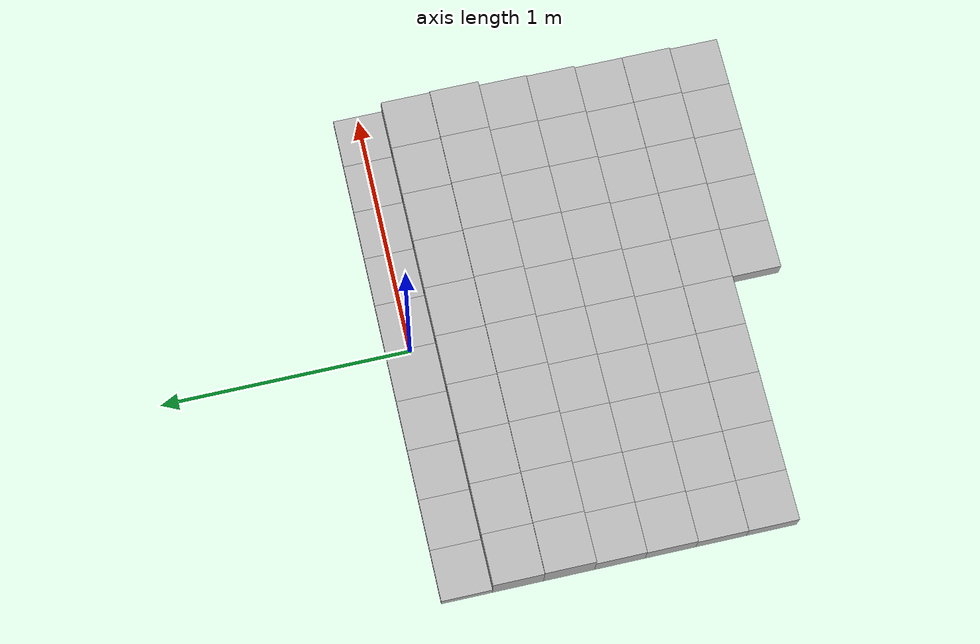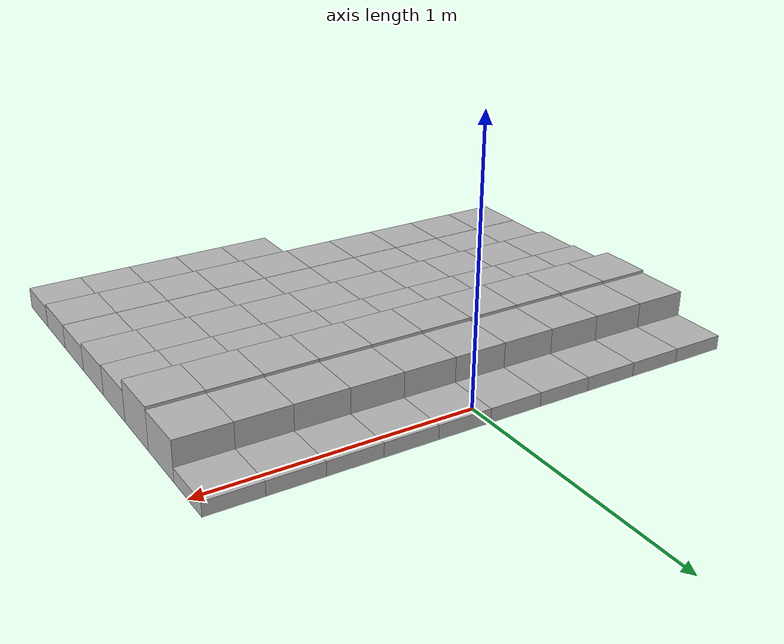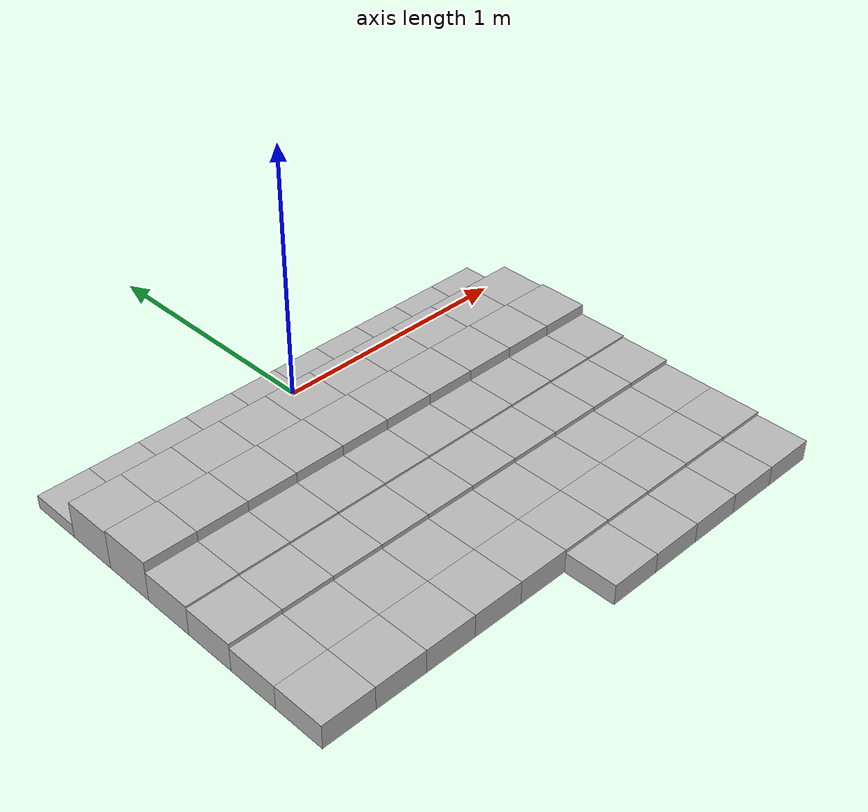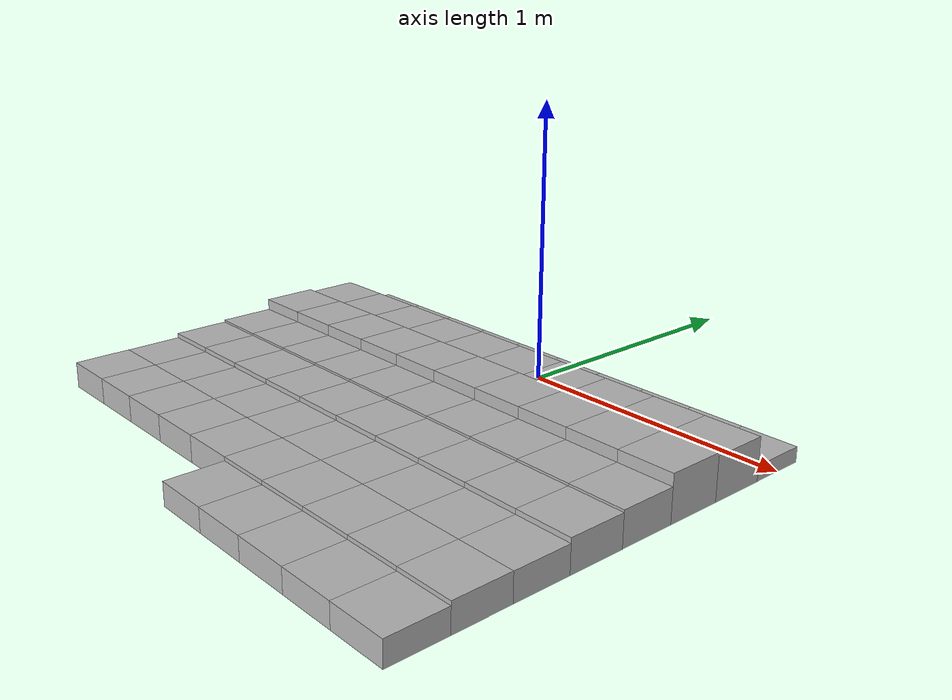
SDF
<sdf version="1.6">
 <model name="Terrain">
  <static>true</static>
  <link name="box_0_0">
   <pose>-0.9 0.0 0.0260707981716 0 0 0</pose>
   <inertial>
    <mass>1.0</mass>
    <inertia><ixx>0.0</ixx><ixy>0.0</ixy><ixz>0.0</ixz><iyy>0.0</iyy><iyz>0.0</iyz><izz>0.0</izz></inertia>
   </inertial>
   <collision name="collision"><geometry><box><size>0.2 0.2 0.0521415963432</size></box></geometry></collision>
   <visual name="visual"><geometry><box><size>0.2 0.2 0.0521415963432</size></box></geometry></visual>
  </link>
  <link name="box_0_1">
   <pose>-0.7 0.0 0.0260707981716 0 0 0</pose>
   <inertial>
    <mass>1.0</mass>
    <inertia><ixx>0.0</ixx><ixy>0.0</ixy><ixz>0.0</ixz><iyy>0.0</iyy><iyz>0.0</iyz><izz>0.0</izz></inertia>
   </inertial>
   <collision name="collision"><geometry><box><size>0.2 0.2 0.0521415963432</size></box></geometry></collision>
   <visual name="visual"><geometry><box><size>0.2 0.2 0.0521415963432</size></box></geometry></visual>
  </link>
  <link name="box_0_2">
   <pose>-0.5 0.0 0.0260707981716 0 0 0</pose>
   <inertial>
    <mass>1.0</mass>
    <inertia><ixx>0.0</ixx><ixy>0.0</ixy><ixz>0.0</ixz><iyy>0.0</iyy><iyz>0.0</iyz><izz>0.0</izz></inertia>
   </inertial>
   <collision name="collision"><geometry><box><size>0.2 0.2 0.0521415963432</size></box></geometry></collision>
   <visual name="visual"><geometry><box><size>0.2 0.2 0.0521415963432</size></box></geometry></visual>
  </link>
  <link name="box_0_3">
   <pose>-0.3 0.0 0.0260707981716 0 0 0</pose>
   <inertial>
    <mass>1.0</mass>
    <inertia><ixx>0.0</ixx><ixy>0.0</ixy><ixz>0.0</ixz><iyy>0.0</iyy><iyz>0.0</iyz><izz>0.0</izz></inertia>
   </inertial>
   <collision name="collision"><geometry><box><size>0.2 0.2 0.0521415963432</size></box></geometry></collision>
   <visual name="visual"><geometry><box><size>0.2 0.2 0.0521415963432</size></box></geometry></visual>
  </link>
  <link name="box_0_4">
   <pose>-0.1 0.0 0.0260707981716 0 0 0</pose>
   <inertial>
    <mass>1.0</mass>
    <inertia><ixx>0.0</ixx><ixy>0.0</ixy><ixz>0.0</ixz><iyy>0.0</iyy><iyz>0.0</iyz><izz>0.0</izz></inertia>
   </inertial>
   <collision name="collision"><geometry><box><size>0.2 0.2 0.0521415963432</size></box></geometry></collision>
   <visual name="visual"><geometry><box><size>0.2 0.2 0.0521415963432</size></box></geometry></visual>
  </link>
  <link name="box_0_5">
   <pose>0.1 0.0 0.0260707981716 0 0 0</pose>
   <inertial>
    <mass>1.0</mass>
    <inertia><ixx>0.0</ixx><ixy>0.0</ixy><ixz>0.0</ixz><iyy>0.0</iyy><iyz>0.0</iyz><izz>0.0</izz></inertia>
   </inertial>
   <collision name="collision"><geometry><box><size>0.2 0.2 0.0521415963432</size></box></geometry></collision>
   <visual name="visual"><geometry><box><size>0.2 0.2 0.0521415963432</size></box></geometry></visual>
  </link>
  <link name="box_0_6">
   <pose>0.3 0.0 0.0260707981716 0 0 0</pose>
   <inertial>
    <mass>1.0</mass>
    <inertia><ixx>0.0</ixx><ixy>0.0</ixy><ixz>0.0</ixz><iyy>0.0</iyy><iyz>0.0</iyz><izz>0.0</izz></inertia>
   </inertial>
   <collision name="collision"><geometry><box><size>0.2 0.2 0.0521415963432</size></box></geometry></collision>
   <visual name="visual"><geometry><box><size>0.2 0.2 0.0521415963432</size></box></geometry></visual>
  </link>
  <link name="box_0_7">
   <pose>0.5 0.0 0.0260707981716 0 0 0</pose>
   <inertial>
    <mass>1.0</mass>
    <inertia><ixx>0.0</ixx><ixy>0.0</ixy><ixz>0.0</ixz><iyy>0.0</iyy><iyz>0.0</iyz><izz>0.0</izz></inertia>
   </inertial>
   <collision name="collision"><geometry><box><size>0.2 0.2 0.0521415963432</size></box></geometry></collision>
   <visual name="visual"><geometry><box><size>0.2 0.2 0.0521415963432</size></box></geometry></visual>
  </link>
  <link name="box_0_8">
   <pose>0.7 0.0 0.0260707981716 0 0 0</pose>
   <inertial>
    <mass>1.0</mass>
    <inertia><ixx>0.0</ixx><ixy>0.0</ixy><ixz>0.0</ixz><iyy>0.0</iyy><iyz>0.0</iyz><izz>0.0</izz></inertia>
   </inertial>
   <collision name="collision"><geometry><box><size>0.2 0.2 0.0521415963432</size></box></geometry></collision>
   <visual name="visual"><geometry><box><size>0.2 0.2 0.0521415963432</size></box></geometry></visual>
  </link>
  <link name="box_0_9">
   <pose>0.9 0.0 0.0260707981716 0 0 0</pose>
   <inertial>
    <mass>1.0</mass>
    <inertia><ixx>0.0</ixx><ixy>0.0</ixy><ixz>0.0</ixz><iyy>0.0</iyy><iyz>0.0</iyz><izz>0.0</izz></inertia>
   </inertial>
   <collision name="collision"><geometry><box><size>0.2 0.2 0.0521415963432</size></box></geometry></collision>
   <visual name="visual"><geometry><box><size>0.2 0.2 0.0521415963432</size></box></geometry></visual>
  </link>
  <link name="box_1_0">
   <pose>-0.9 -0.2 0.0728643831933 0 0 0</pose>
   <inertial>
    <mass>1.0</mass>
    <inertia><ixx>0.0</ixx><ixy>0.0</ixy><ixz>0.0</ixz><iyy>0.0</iyy><iyz>0.0</iyz><izz>0.0</izz></inertia>
   </inertial>
   <collision name="collision"><geometry><box><size>0.2 0.2 0.145728766387</size></box></geometry></collision>
   <visual name="visual"><geometry><box><size>0.2 0.2 0.145728766387</size></box></geometry></visual>
  </link>
  <link name="box_1_1">
   <pose>-0.7 -0.2 0.0728643831933 0 0 0</pose>
   <inertial>
    <mass>1.0</mass>
    <inertia><ixx>0.0</ixx><ixy>0.0</ixy><ixz>0.0</ixz><iyy>0.0</iyy><iyz>0.0</iyz><izz>0.0</izz></inertia>
   </inertial>
   <collision name="collision"><geometry><box><size>0.2 0.2 0.145728766387</size></box></geometry></collision>
   <visual name="visual"><geometry><box><size>0.2 0.2 0.145728766387</size></box></geometry></visual>
  </link>
  <link name="box_1_2">
   <pose>-0.5 -0.2 0.0728643831933 0 0 0</pose>
   <inertial>
    <mass>1.0</mass>
    <inertia><ixx>0.0</ixx><ixy>0.0</ixy><ixz>0.0</ixz><iyy>0.0</iyy><iyz>0.0</iyz><izz>0.0</izz></inertia>
   </inertial>
   <collision name="collision"><geometry><box><size>0.2 0.2 0.145728766387</size></box></geometry></collision>
   <visual name="visual"><geometry><box><size>0.2 0.2 0.145728766387</size></box></geometry></visual>
  </link>
  <link name="box_1_3">
   <pose>-0.3 -0.2 0.0728643831933 0 0 0</pose>
   <inertial>
    <mass>1.0</mass>
    <inertia><ixx>0.0</ixx><ixy>0.0</ixy><ixz>0.0</ixz><iyy>0.0</iyy><iyz>0.0</iyz><izz>0.0</izz></inertia>
   </inertial>
   <collision name="collision"><geometry><box><size>0.2 0.2 0.145728766387</size></box></geometry></collision>
   <visual name="visual"><geometry><box><size>0.2 0.2 0.145728766387</size></box></geometry></visual>
  </link>
  <link name="box_1_4">
   <pose>-0.1 -0.2 0.0728643831933 0 0 0</pose>
   <inertial>
    <mass>1.0</mass>
    <inertia><ixx>0.0</ixx><ixy>0.0</ixy><ixz>0.0</ixz><iyy>0.0</iyy><iyz>0.0</iyz><izz>0.0</izz></inertia>
   </inertial>
   <collision name="collision"><geometry><box><size>0.2 0.2 0.145728766387</size></box></geometry></collision>
   <visual name="visual"><geometry><box><size>0.2 0.2 0.145728766387</size></box></geometry></visual>
  </link>
  <link name="box_1_5">
   <pose>0.1 -0.2 0.0728643831933 0 0 0</pose>
   <inertial>
    <mass>1.0</mass>
    <inertia><ixx>0.0</ixx><ixy>0.0</ixy><ixz>0.0</ixz><iyy>0.0</iyy><iyz>0.0</iyz><izz>0.0</izz></inertia>
   </inertial>
   <collision name="collision"><geometry><box><size>0.2 0.2 0.145728766387</size></box></geometry></collision>
   <visual name="visual"><geometry><box><size>0.2 0.2 0.145728766387</size></box></geometry></visual>
  </link>
  <link name="box_1_6">
   <pose>0.3 -0.2 0.0728643831933 0 0 0</pose>
   <inertial>
    <mass>1.0</mass>
    <inertia><ixx>0.0</ixx><ixy>0.0</ixy><ixz>0.0</ixz><iyy>0.0</iyy><iyz>0.0</iyz><izz>0.0</izz></inertia>
   </inertial>
   <collision name="collision"><geometry><box><size>0.2 0.2 0.145728766387</size></box></geometry></collision>
   <visual name="visual"><geometry><box><size>0.2 0.2 0.145728766387</size></box></geometry></visual>
  </link>
  <link name="box_1_7">
   <pose>0.5 -0.2 0.0728643831933 0 0 0</pose>
   <inertial>
    <mass>1.0</mass>
    <inertia><ixx>0.0</ixx><ixy>0.0</ixy><ixz>0.0</ixz><iyy>0.0</iyy><iyz>0.0</iyz><izz>0.0</izz></inertia>
   </inertial>
   <collision name="collision"><geometry><box><size>0.2 0.2 0.145728766387</size></box></geometry></collision>
   <visual name="visual"><geometry><box><size>0.2 0.2 0.145728766387</size></box></geometry></visual>
  </link>
  <link name="box_1_8">
   <pose>0.7 -0.2 0.0728643831933 0 0 0</pose>
   <inertial>
    <mass>1.0</mass>
    <inertia><ixx>0.0</ixx><ixy>0.0</ixy><ixz>0.0</ixz><iyy>0.0</iyy><iyz>0.0</iyz><izz>0.0</izz></inertia>
   </inertial>
   <collision name="collision"><geometry><box><size>0.2 0.2 0.145728766387</size></box></geometry></collision>
   <visual name="visual"><geometry><box><size>0.2 0.2 0.145728766387</size></box></geometry></visual>
  </link>
  <link name="box_1_9">
   <pose>0.9 -0.2 0.0728643831933 0 0 0</pose>
   <inertial>
    <mass>1.0</mass>
    <inertia><ixx>0.0</ixx><ixy>0.0</ixy><ixz>0.0</ixz><iyy>0.0</iyy><iyz>0.0</iyz><izz>0.0</izz></inertia>
   </inertial>
   <collision name="collision"><geometry><box><size>0.2 0.2 0.145728766387</size></box></geometry></collision>
   <visual name="visual"><geometry><box><size>0.2 0.2 0.145728766387</size></box></geometry></visual>
  </link>
  <link name="box_2_0">
   <pose>-0.9 -0.4 0.0782064905517 0 0 0</pose>
   <inertial>
    <mass>1.0</mass>
    <inertia><ixx>0.0</ixx><ixy>0.0</ixy><ixz>0.0</ixz><iyy>0.0</iyy><iyz>0.0</iyz><izz>0.0</izz></inertia>
   </inertial>
   <collision name="collision"><geometry><box><size>0.2 0.2 0.156412981103</size></box></geometry></collision>
   <visual name="visual"><geometry><box><size>0.2 0.2 0.156412981103</size></box></geometry></visual>
  </link>
  <link name="box_2_1">
   <pose>-0.7 -0.4 0.0782064905517 0 0 0</pose>
   <inertial>
    <mass>1.0</mass>
    <inertia><ixx>0.0</ixx><ixy>0.0</ixy><ixz>0.0</ixz><iyy>0.0</iyy><iyz>0.0</iyz><izz>0.0</izz></inertia>
   </inertial>
   <collision name="collision"><geometry><box><size>0.2 0.2 0.156412981103</size></box></geometry></collision>
   <visual name="visual"><geometry><box><size>0.2 0.2 0.156412981103</size></box></geometry></visual>
  </link>
  <link name="box_2_2">
   <pose>-0.5 -0.4 0.0782064905517 0 0 0</pose>
   <inertial>
    <mass>1.0</mass>
    <inertia><ixx>0.0</ixx><ixy>0.0</ixy><ixz>0.0</ixz><iyy>0.0</iyy><iyz>0.0</iyz><izz>0.0</izz></inertia>
   </inertial>
   <collision name="collision"><geometry><box><size>0.2 0.2 0.156412981103</size></box></geometry></collision>
   <visual name="visual"><geometry><box><size>0.2 0.2 0.156412981103</size></box></geometry></visual>
  </link>
  <link name="box_2_3">
   <pose>-0.3 -0.4 0.0782064905517 0 0 0</pose>
   <inertial>
    <mass>1.0</mass>
    <inertia><ixx>0.0</ixx><ixy>0.0</ixy><ixz>0.0</ixz><iyy>0.0</iyy><iyz>0.0</iyz><izz>0.0</izz></inertia>
   </inertial>
   <collision name="collision"><geometry><box><size>0.2 0.2 0.156412981103</size></box></geometry></collision>
   <visual name="visual"><geometry><box><size>0.2 0.2 0.156412981103</size></box></geometry></visual>
  </link>
  <link name="box_2_4">
   <pose>-0.1 -0.4 0.0782064905517 0 0 0</pose>
   <inertial>
    <mass>1.0</mass>
    <inertia><ixx>0.0</ixx><ixy>0.0</ixy><ixz>0.0</ixz><iyy>0.0</iyy><iyz>0.0</iyz><izz>0.0</izz></inertia>
   </inertial>
   <collision name="collision"><geometry><box><size>0.2 0.2 0.156412981103</size></box></geometry></collision>
   <visual name="visual"><geometry><box><size>0.2 0.2 0.156412981103</size></box></geometry></visual>
  </link>
  <link name="box_2_5">
   <pose>0.1 -0.4 0.0782064905517 0 0 0</pose>
   <inertial>
    <mass>1.0</mass>
    <inertia><ixx>0.0</ixx><ixy>0.0</ixy><ixz>0.0</ixz><iyy>0.0</iyy><iyz>0.0</iyz><izz>0.0</izz></inertia>
   </inertial>
   <collision name="collision"><geometry><box><size>0.2 0.2 0.156412981103</size></box></geometry></collision>
   <visual name="visual"><geometry><box><size>0.2 0.2 0.156412981103</size></box></geometry></visual>
  </link>
  <link name="box_2_6">
   <pose>0.3 -0.4 0.0782064905517 0 0 0</pose>
   <inertial>
    <mass>1.0</mass>
    <inertia><ixx>0.0</ixx><ixy>0.0</ixy><ixz>0.0</ixz><iyy>0.0</iyy><iyz>0.0</iyz><izz>0.0</izz></inertia>
   </inertial>
   <collision name="collision"><geometry><box><size>0.2 0.2 0.156412981103</size></box></geometry></collision>
   <visual name="visual"><geometry><box><size>0.2 0.2 0.156412981103</size></box></geometry></visual>
  </link>
  <link name="box_2_7">
   <pose>0.5 -0.4 0.0782064905517 0 0 0</pose>
   <inertial>
    <mass>1.0</mass>
    <inertia><ixx>0.0</ixx><ixy>0.0</ixy><ixz>0.0</ixz><iyy>0.0</iyy><iyz>0.0</iyz><izz>0.0</izz></inertia>
   </inertial>
   <collision name="collision"><geometry><box><size>0.2 0.2 0.156412981103</size></box></geometry></collision>
   <visual name="visual"><geometry><box><size>0.2 0.2 0.156412981103</size></box></geometry></visual>
  </link>
  <link name="box_2_8">
   <pose>0.7 -0.4 0.0782064905517 0 0 0</pose>
   <inertial>
    <mass>1.0</mass>
    <inertia><ixx>0.0</ixx><ixy>0.0</ixy><ixz>0.0</ixz><iyy>0.0</iyy><iyz>0.0</iyz><izz>0.0</izz></inertia>
   </inertial>
   <collision name="collision"><geometry><box><size>0.2 0.2 0.156412981103</size></box></geometry></collision>
   <visual name="visual"><geometry><box><size>0.2 0.2 0.156412981103</size></box></geometry></visual>
  </link>
  <link name="box_2_9">
   <pose>0.9 -0.4 0.0782064905517 0 0 0</pose>
   <inertial>
    <mass>1.0</mass>
    <inertia><ixx>0.0</ixx><ixy>0.0</ixy><ixz>0.0</ixz><iyy>0.0</iyy><iyz>0.0</iyz><izz>0.0</izz></inertia>
   </inertial>
   <collision name="collision"><geometry><box><size>0.2 0.2 0.156412981103</size></box></geometry></collision>
   <visual name="visual"><geometry><box><size>0.2 0.2 0.156412981103</size></box></geometry></visual>
  </link>
  <link name="box_3_0">
   <pose>-0.9 -0.6 0.0580793520767 0 0 0</pose>
   <inertial>
    <mass>1.0</mass>
    <inertia><ixx>0.0</ixx><ixy>0.0</ixy><ixz>0.0</ixz><iyy>0.0</iyy><iyz>0.0</iyz><izz>0.0</izz></inertia>
   </inertial>
   <collision name="collision"><geometry><box><size>0.2 0.2 0.116158704153</size></box></geometry></collision>
   <visual name="visual"><geometry><box><size>0.2 0.2 0.116158704153</size></box></geometry></visual>
  </link>
  <link name="box_3_1">
   <pose>-0.7 -0.6 0.0580793520767 0 0 0</pose>
   <inertial>
    <mass>1.0</mass>
    <inertia><ixx>0.0</ixx><ixy>0.0</ixy><ixz>0.0</ixz><iyy>0.0</iyy><iyz>0.0</iyz><izz>0.0</izz></inertia>
   </inertial>
   <collision name="collision"><geometry><box><size>0.2 0.2 0.116158704153</size></box></geometry></collision>
   <visual name="visual"><geometry><box><size>0.2 0.2 0.116158704153</size></box></geometry></visual>
  </link>
  <link name="box_3_2">
   <pose>-0.5 -0.6 0.0580793520767 0 0 0</pose>
   <inertial>
    <mass>1.0</mass>
    <inertia><ixx>0.0</ixx><ixy>0.0</ixy><ixz>0.0</ixz><iyy>0.0</iyy><iyz>0.0</iyz><izz>0.0</izz></inertia>
   </inertial>
   <collision name="collision"><geometry><box><size>0.2 0.2 0.116158704153</size></box></geometry></collision>
   <visual name="visual"><geometry><box><size>0.2 0.2 0.116158704153</size></box></geometry></visual>
  </link>
  <link name="box_3_3">
   <pose>-0.3 -0.6 0.0580793520767 0 0 0</pose>
   <inertial>
    <mass>1.0</mass>
    <inertia><ixx>0.0</ixx><ixy>0.0</ixy><ixz>0.0</ixz><iyy>0.0</iyy><iyz>0.0</iyz><izz>0.0</izz></inertia>
   </inertial>
   <collision name="collision"><geometry><box><size>0.2 0.2 0.116158704153</size></box></geometry></collision>
   <visual name="visual"><geometry><box><size>0.2 0.2 0.116158704153</size></box></geometry></visual>
  </link>
  <link name="box_3_4">
   <pose>-0.1 -0.6 0.0580793520767 0 0 0</pose>
   <inertial>
    <mass>1.0</mass>
    <inertia><ixx>0.0</ixx><ixy>0.0</ixy><ixz>0.0</ixz><iyy>0.0</iyy><iyz>0.0</iyz><izz>0.0</izz></inertia>
   </inertial>
   <collision name="collision"><geometry><box><size>0.2 0.2 0.116158704153</size></box></geometry></collision>
   <visual name="visual"><geometry><box><size>0.2 0.2 0.116158704153</size></box></geometry></visual>
  </link>
  <link name="box_3_5">
   <pose>0.1 -0.6 0.0580793520767 0 0 0</pose>
   <inertial>
    <mass>1.0</mass>
    <inertia><ixx>0.0</ixx><ixy>0.0</ixy><ixz>0.0</ixz><iyy>0.0</iyy><iyz>0.0</iyz><izz>0.0</izz></inertia>
   </inertial>
   <collision name="collision"><geometry><box><size>0.2 0.2 0.116158704153</size></box></geometry></collision>
   <visual name="visual"><geometry><box><size>0.2 0.2 0.116158704153</size></box></geometry></visual>
  </link>
  <link name="box_3_6">
   <pose>0.3 -0.6 0.0580793520767 0 0 0</pose>
   <inertial>
    <mass>1.0</mass>
    <inertia><ixx>0.0</ixx><ixy>0.0</ixy><ixz>0.0</ixz><iyy>0.0</iyy><iyz>0.0</iyz><izz>0.0</izz></inertia>
   </inertial>
   <collision name="collision"><geometry><box><size>0.2 0.2 0.116158704153</size></box></geometry></collision>
   <visual name="visual"><geometry><box><size>0.2 0.2 0.116158704153</size></box></geometry></visual>
  </link>
  <link name="box_3_7">
   <pose>0.5 -0.6 0.0580793520767 0 0 0</pose>
   <inertial>
    <mass>1.0</mass>
    <inertia><ixx>0.0</ixx><ixy>0.0</ixy><ixz>0.0</ixz><iyy>0.0</iyy><iyz>0.0</iyz><izz>0.0</izz></inertia>
   </inertial>
   <collision name="collision"><geometry><box><size>0.2 0.2 0.116158704153</size></box></geometry></collision>
   <visual name="visual"><geometry><box><size>0.2 0.2 0.116158704153</size></box></geometry></visual>
  </link>
  <link name="box_3_8">
   <pose>0.7 -0.6 0.0580793520767 0 0 0</pose>
   <inertial>
    <mass>1.0</mass>
    <inertia><ixx>0.0</ixx><ixy>0.0</ixy><ixz>0.0</ixz><iyy>0.0</iyy><iyz>0.0</iyz><izz>0.0</izz></inertia>
   </inertial>
   <collision name="collision"><geometry><box><size>0.2 0.2 0.116158704153</size></box></geometry></collision>
   <visual name="visual"><geometry><box><size>0.2 0.2 0.116158704153</size></box></geometry></visual>
  </link>
  <link name="box_3_9">
   <pose>0.9 -0.6 0.0580793520767 0 0 0</pose>
   <inertial>
    <mass>1.0</mass>
    <inertia><ixx>0.0</ixx><ixy>0.0</ixy><ixz>0.0</ixz><iyy>0.0</iyy><iyz>0.0</iyz><izz>0.0</izz></inertia>
   </inertial>
   <collision name="collision"><geometry><box><size>0.2 0.2 0.116158704153</size></box></geometry></collision>
   <visual name="visual"><geometry><box><size>0.2 0.2 0.116158704153</size></box></geometry></visual>
  </link>
  <link name="box_4_0">
   <pose>-0.9 -0.8 0.0542088649202 0 0 0</pose>
   <inertial>
    <mass>1.0</mass>
    <inertia><ixx>0.0</ixx><ixy>0.0</ixy><ixz>0.0</ixz><iyy>0.0</iyy><iyz>0.0</iyz><izz>0.0</izz></inertia>
   </inertial>
   <collision name="collision"><geometry><box><size>0.2 0.2 0.10841772984</size></box></geometry></collision>
   <visual name="visual"><geometry><box><size>0.2 0.2 0.10841772984</size></box></geometry></visual>
  </link>
  <link name="box_4_1">
   <pose>-0.7 -0.8 0.0542088649202 0 0 0</pose>
   <inertial>
    <mass>1.0</mass>
    <inertia><ixx>0.0</ixx><ixy>0.0</ixy><ixz>0.0</ixz><iyy>0.0</iyy><iyz>0.0</iyz><izz>0.0</izz></inertia>
   </inertial>
   <collision name="collision"><geometry><box><size>0.2 0.2 0.10841772984</size></box></geometry></collision>
   <visual name="visual"><geometry><box><size>0.2 0.2 0.10841772984</size></box></geometry></visual>
  </link>
  <link name="box_4_2">
   <pose>-0.5 -0.8 0.0542088649202 0 0 0</pose>
   <inertial>
    <mass>1.0</mass>
    <inertia><ixx>0.0</ixx><ixy>0.0</ixy><ixz>0.0</ixz><iyy>0.0</iyy><iyz>0.0</iyz><izz>0.0</izz></inertia>
   </inertial>
   <collision name="collision"><geometry><box><size>0.2 0.2 0.10841772984</size></box></geometry></collision>
   <visual name="visual"><geometry><box><size>0.2 0.2 0.10841772984</size></box></geometry></visual>
  </link>
  <link name="box_4_3">
   <pose>-0.3 -0.8 0.0542088649202 0 0 0</pose>
   <inertial>
    <mass>1.0</mass>
    <inertia><ixx>0.0</ixx><ixy>0.0</ixy><ixz>0.0</ixz><iyy>0.0</iyy><iyz>0.0</iyz><izz>0.0</izz></inertia>
   </inertial>
   <collision name="collision"><geometry><box><size>0.2 0.2 0.10841772984</size></box></geometry></collision>
   <visual name="visual"><geometry><box><size>0.2 0.2 0.10841772984</size></box></geometry></visual>
  </link>
  <link name="box_4_4">
   <pose>-0.1 -0.8 0.0542088649202 0 0 0</pose>
   <inertial>
    <mass>1.0</mass>
    <inertia><ixx>0.0</ixx><ixy>0.0</ixy><ixz>0.0</ixz><iyy>0.0</iyy><iyz>0.0</iyz><izz>0.0</izz></inertia>
   </inertial>
   <collision name="collision"><geometry><box><size>0.2 0.2 0.10841772984</size></box></geometry></collision>
   <visual name="visual"><geometry><box><size>0.2 0.2 0.10841772984</size></box></geometry></visual>
  </link>
  <link name="box_4_5">
   <pose>0.1 -0.8 0.0542088649202 0 0 0</pose>
   <inertial>
    <mass>1.0</mass>
    <inertia><ixx>0.0</ixx><ixy>0.0</ixy><ixz>0.0</ixz><iyy>0.0</iyy><iyz>0.0</iyz><izz>0.0</izz></inertia>
   </inertial>
   <collision name="collision"><geometry><box><size>0.2 0.2 0.10841772984</size></box></geometry></collision>
   <visual name="visual"><geometry><box><size>0.2 0.2 0.10841772984</size></box></geometry></visual>
  </link>
  <link name="box_4_6">
   <pose>0.3 -0.8 0.0542088649202 0 0 0</pose>
   <inertial>
    <mass>1.0</mass>
    <inertia><ixx>0.0</ixx><ixy>0.0</ixy><ixz>0.0</ixz><iyy>0.0</iyy><iyz>0.0</iyz><izz>0.0</izz></inertia>
   </inertial>
   <collision name="collision"><geometry><box><size>0.2 0.2 0.10841772984</size></box></geometry></collision>
   <visual name="visual"><geometry><box><size>0.2 0.2 0.10841772984</size></box></geometry></visual>
  </link>
  <link name="box_4_7">
   <pose>0.5 -0.8 0.0542088649202 0 0 0</pose>
   <inertial>
    <mass>1.0</mass>
    <inertia><ixx>0.0</ixx><ixy>0.0</ixy><ixz>0.0</ixz><iyy>0.0</iyy><iyz>0.0</iyz><izz>0.0</izz></inertia>
   </inertial>
   <collision name="collision"><geometry><box><size>0.2 0.2 0.10841772984</size></box></geometry></collision>
   <visual name="visual"><geometry><box><size>0.2 0.2 0.10841772984</size></box></geometry></visual>
  </link>
  <link name="box_4_8">
   <pose>0.7 -0.8 0.0542088649202 0 0 0</pose>
   <inertial>
    <mass>1.0</mass>
    <inertia><ixx>0.0</ixx><ixy>0.0</ixy><ixz>0.0</ixz><iyy>0.0</iyy><iyz>0.0</iyz><izz>0.0</izz></inertia>
   </inertial>
   <collision name="collision"><geometry><box><size>0.2 0.2 0.10841772984</size></box></geometry></collision>
   <visual name="visual"><geometry><box><size>0.2 0.2 0.10841772984</size></box></geometry></visual>
  </link>
  <link name="box_4_9">
   <pose>0.9 -0.8 0.0542088649202 0 0 0</pose>
   <inertial>
    <mass>1.0</mass>
    <inertia><ixx>0.0</ixx><ixy>0.0</ixy><ixz>0.0</ixz><iyy>0.0</iyy><iyz>0.0</iyz><izz>0.0</izz></inertia>
   </inertial>
   <collision name="collision"><geometry><box><size>0.2 0.2 0.10841772984</size></box></geometry></collision>
   <visual name="visual"><geometry><box><size>0.2 0.2 0.10841772984</size></box></geometry></visual>
  </link>
  <link name="box_5_0">
   <pose>-0.9 -1.0 0.0459398393377 0 0 0</pose>
   <inertial>
    <mass>1.0</mass>
    <inertia><ixx>0.0</ixx><ixy>0.0</ixy><ixz>0.0</ixz><iyy>0.0</iyy><iyz>0.0</iyz><izz>0.0</izz></inertia>
   </inertial>
   <collision name="collision"><geometry><box><size>0.2 0.2 0.0918796786754</size></box></geometry></collision>
   <visual name="visual"><geometry><box><size>0.2 0.2 0.0918796786754</size></box></geometry></visual>
  </link>
  <link name="box_5_1">
   <pose>-0.7 -1.0 0.0459398393377 0 0 0</pose>
   <inertial>
    <mass>1.0</mass>
    <inertia><ixx>0.0</ixx><ixy>0.0</ixy><ixz>0.0</ixz><iyy>0.0</iyy><iyz>0.0</iyz><izz>0.0</izz></inertia>
   </inertial>
   <collision name="collision"><geometry><box><size>0.2 0.2 0.0918796786754</size></box></geometry></collision>
   <visual name="visual"><geometry><box><size>0.2 0.2 0.0918796786754</size></box></geometry></visual>
  </link>
  <link name="box_5_2">
   <pose>-0.5 -1.0 0.0459398393377 0 0 0</pose>
   <inertial>
    <mass>1.0</mass>
    <inertia><ixx>0.0</ixx><ixy>0.0</ixy><ixz>0.0</ixz><iyy>0.0</iyy><iyz>0.0</iyz><izz>0.0</izz></inertia>
   </inertial>
   <collision name="collision"><geometry><box><size>0.2 0.2 0.0918796786754</size></box></geometry></collision>
   <visual name="visual"><geometry><box><size>0.2 0.2 0.0918796786754</size></box></geometry></visual>
  </link>
  <link name="box_5_3">
   <pose>-0.3 -1.0 0.0459398393377 0 0 0</pose>
   <inertial>
    <mass>1.0</mass>
    <inertia><ixx>0.0</ixx><ixy>0.0</ixy><ixz>0.0</ixz><iyy>0.0</iyy><iyz>0.0</iyz><izz>0.0</izz></inertia>
   </inertial>
   <collision name="collision"><geometry><box><size>0.2 0.2 0.0918796786754</size></box></geometry></collision>
   <visual name="visual"><geometry><box><size>0.2 0.2 0.0918796786754</size></box></geometry></visual>
  </link>
  <link name="box_5_4">
   <pose>-0.1 -1.0 0.0459398393377 0 0 0</pose>
   <inertial>
    <mass>1.0</mass>
    <inertia><ixx>0.0</ixx><ixy>0.0</ixy><ixz>0.0</ixz><iyy>0.0</iyy><iyz>0.0</iyz><izz>0.0</izz></inertia>
   </inertial>
   <collision name="collision"><geometry><box><size>0.2 0.2 0.0918796786754</size></box></geometry></collision>
   <visual name="visual"><geometry><box><size>0.2 0.2 0.0918796786754</size></box></geometry></visual>
  </link>
  <link name="box_5_5">
   <pose>0.1 -1.0 0.0459398393377 0 0 0</pose>
   <inertial>
    <mass>1.0</mass>
    <inertia><ixx>0.0</ixx><ixy>0.0</ixy><ixz>0.0</ixz><iyy>0.0</iyy><iyz>0.0</iyz><izz>0.0</izz></inertia>
   </inertial>
   <collision name="collision"><geometry><box><size>0.2 0.2 0.0918796786754</size></box></geometry></collision>
   <visual name="visual"><geometry><box><size>0.2 0.2 0.0918796786754</size></box></geometry></visual>
  </link>
  <link name="box_5_6">
   <pose>0.3 -1.0 0.0459398393377 0 0 0</pose>
   <inertial>
    <mass>1.0</mass>
    <inertia><ixx>0.0</ixx><ixy>0.0</ixy><ixz>0.0</ixz><iyy>0.0</iyy><iyz>0.0</iyz><izz>0.0</izz></inertia>
   </inertial>
   <collision name="collision"><geometry><box><size>0.2 0.2 0.0918796786754</size></box></geometry></collision>
   <visual name="visual"><geometry><box><size>0.2 0.2 0.0918796786754</size></box></geometry></visual>
  </link>
  <link name="box_5_7">
   <pose>0.5 -1.0 0.0459398393377 0 0 0</pose>
   <inertial>
    <mass>1.0</mass>
    <inertia><ixx>0.0</ixx><ixy>0.0</ixy><ixz>0.0</ixz><iyy>0.0</iyy><iyz>0.0</iyz><izz>0.0</izz></inertia>
   </inertial>
   <collision name="collision"><geometry><box><size>0.2 0.2 0.0918796786754</size></box></geometry></collision>
   <visual name="visual"><geometry><box><size>0.2 0.2 0.0918796786754</size></box></geometry></visual>
  </link>
  <link name="box_5_8">
   <pose>0.7 -1.0 0.0459398393377 0 0 0</pose>
   <inertial>
    <mass>1.0</mass>
    <inertia><ixx>0.0</ixx><ixy>0.0</ixy><ixz>0.0</ixz><iyy>0.0</iyy><iyz>0.0</iyz><izz>0.0</izz></inertia>
   </inertial>
   <collision name="collision"><geometry><box><size>0.2 0.2 0.0918796786754</size></box></geometry></collision>
   <visual name="visual"><geometry><box><size>0.2 0.2 0.0918796786754</size></box></geometry></visual>
  </link>
  <link name="box_5_9">
   <pose>0.9 -1.0 0.0459398393377 0 0 0</pose>
   <inertial>
    <mass>1.0</mass>
    <inertia><ixx>0.0</ixx><ixy>0.0</ixy><ixz>0.0</ixz><iyy>0.0</iyy><iyz>0.0</iyz><izz>0.0</izz></inertia>
   </inertial>
   <collision name="collision"><geometry><box><size>0.2 0.2 0.0918796786754</size></box></geometry></collision>
   <visual name="visual"><geometry><box><size>0.2 0.2 0.0918796786754</size></box></geometry></visual>
  </link>
  <link name="box_6_0">
   <pose>-0.9 -1.2 0.0461971218012 0 0 0</pose>
   <inertial>
    <mass>1.0</mass>
    <inertia><ixx>0.0</ixx><ixy>0.0</ixy><ixz>0.0</ixz><iyy>0.0</iyy><iyz>0.0</iyz><izz>0.0</izz></inertia>
   </inertial>
   <collision name="collision"><geometry><box><size>0.2 0.2 0.0923942436025</size></box></geometry></collision>
   <visual name="visual"><geometry><box><size>0.2 0.2 0.0923942436025</size></box></geometry></visual>
  </link>
  <link name="box_6_1">
   <pose>-0.7 -1.2 0.0461971218012 0 0 0</pose>
   <inertial>
    <mass>1.0</mass>
    <inertia><ixx>0.0</ixx><ixy>0.0</ixy><ixz>0.0</ixz><iyy>0.0</iyy><iyz>0.0</iyz><izz>0.0</izz></inertia>
   </inertial>
   <collision name="collision"><geometry><box><size>0.2 0.2 0.0923942436025</size></box></geometry></collision>
   <visual name="visual"><geometry><box><size>0.2 0.2 0.0923942436025</size></box></geometry></visual>
  </link>
  <link name="box_6_2">
   <pose>-0.5 -1.2 0.0461971218012 0 0 0</pose>
   <inertial>
    <mass>1.0</mass>
    <inertia><ixx>0.0</ixx><ixy>0.0</ixy><ixz>0.0</ixz><iyy>0.0</iyy><iyz>0.0</iyz><izz>0.0</izz></inertia>
   </inertial>
   <collision name="collision"><geometry><box><size>0.2 0.2 0.0923942436025</size></box></geometry></collision>
   <visual name="visual"><geometry><box><size>0.2 0.2 0.0923942436025</size></box></geometry></visual>
  </link>
  <link name="box_6_3">
   <pose>-0.3 -1.2 0.0461971218012 0 0 0</pose>
   <inertial>
    <mass>1.0</mass>
    <inertia><ixx>0.0</ixx><ixy>0.0</ixy><ixz>0.0</ixz><iyy>0.0</iyy><iyz>0.0</iyz><izz>0.0</izz></inertia>
   </inertial>
   <collision name="collision"><geometry><box><size>0.2 0.2 0.0923942436025</size></box></geometry></collision>
   <visual name="visual"><geometry><box><size>0.2 0.2 0.0923942436025</size></box></geometry></visual>
  </link>
  <link name="box_6_4">
   <pose>-0.1 -1.2 0.0461971218012 0 0 0</pose>
   <inertial>
    <mass>1.0</mass>
    <inertia><ixx>0.0</ixx><ixy>0.0</ixy><ixz>0.0</ixz><iyy>0.0</iyy><iyz>0.0</iyz><izz>0.0</izz></inertia>
   </inertial>
   <collision name="collision"><geometry><box><size>0.2 0.2 0.0923942436025</size></box></geometry></collision>
   <visual name="visual"><geometry><box><size>0.2 0.2 0.0923942436025</size></box></geometry></visual>
  </link>
  <link name="box_6_5">
   <pose>0.1 -1.2 0.0461971218012 0 0 0</pose>
   <inertial>
    <mass>1.0</mass>
    <inertia><ixx>0.0</ixx><ixy>0.0</ixy><ixz>0.0</ixz><iyy>0.0</iyy><iyz>0.0</iyz><izz>0.0</izz></inertia>
   </inertial>
   <collision name="collision"><geometry><box><size>0.2 0.2 0.0923942436025</size></box></geometry></collision>
   <visual name="visual"><geometry><box><size>0.2 0.2 0.0923942436025</size></box></geometry></visual>
  </link>
  <link name="box_6_6">
   <pose>0.3 -1.2 0.0461971218012 0 0 0</pose>
   <inertial>
    <mass>1.0</mass>
    <inertia><ixx>0.0</ixx><ixy>0.0</ixy><ixz>0.0</ixz><iyy>0.0</iyy><iyz>0.0</iyz><izz>0.0</izz></inertia>
   </inertial>
   <collision name="collision"><geometry><box><size>0.2 0.2 0.0923942436025</size></box></geometry></collision>
   <visual name="visual"><geometry><box><size>0.2 0.2 0.0923942436025</size></box></geometry></visual>
  </link>
  <link name="box_6_7">
   <pose>0.5 -1.2 0.0461971218012 0 0 0</pose>
   <inertial>
    <mass>1.0</mass>
    <inertia><ixx>0.0</ixx><ixy>0.0</ixy><ixz>0.0</ixz><iyy>0.0</iyy><iyz>0.0</iyz><izz>0.0</izz></inertia>
   </inertial>
   <collision name="collision"><geometry><box><size>0.2 0.2 0.0923942436025</size></box></geometry></collision>
   <visual name="visual"><geometry><box><size>0.2 0.2 0.0923942436025</size></box></geometry></visual>
  </link>
  <link name="box_6_8">
   <pose>0.7 -1.2 0.0461971218012 0 0 0</pose>
   <inertial>
    <mass>1.0</mass>
    <inertia><ixx>0.0</ixx><ixy>0.0</ixy><ixz>0.0</ixz><iyy>0.0</iyy><iyz>0.0</iyz><izz>0.0</izz></inertia>
   </inertial>
   <collision name="collision"><geometry><box><size>0.2 0.2 0.0923942436025</size></box></geometry></collision>
   <visual name="visual"><geometry><box><size>0.2 0.2 0.0923942436025</size></box></geometry></visual>
  </link>
  <link name="box_6_9">
   <pose>0.9 -1.2 0.0461971218012 0 0 0</pose>
   <inertial>
    <mass>1.0</mass>
    <inertia><ixx>0.0</ixx><ixy>0.0</ixy><ixz>0.0</ixz><iyy>0.0</iyy><iyz>0.0</iyz><izz>0.0</izz></inertia>
   </inertial>
   <collision name="collision"><geometry><box><size>0.2 0.2 0.0923942436025</size></box></geometry></collision>
   <visual name="visual"><geometry><box><size>0.2 0.2 0.0923942436025</size></box></geometry></visual>
  </link>
  <link name="box_7_5">
   <pose>0.1 -1.4 0.0395804026666 0 0 0</pose>
   <inertial>
    <mass>1.0</mass>
    <inertia><ixx>0.0</ixx><ixy>0.0</ixy><ixz>0.0</ixz><iyy>0.0</iyy><iyz>0.0</iyz><izz>0.0</izz></inertia>
   </inertial>
   <collision name="collision"><geometry><box><size>0.2 0.2 0.0791608053333</size></box></geometry></collision>
   <visual name="visual"><geometry><box><size>0.2 0.2 0.0791608053333</size></box></geometry></visual>
  </link>
  <link name="box_7_6">
   <pose>0.3 -1.4 0.0395804026666 0 0 0</pose>
   <inertial>
    <mass>1.0</mass>
    <inertia><ixx>0.0</ixx><ixy>0.0</ixy><ixz>0.0</ixz><iyy>0.0</iyy><iyz>0.0</iyz><izz>0.0</izz></inertia>
   </inertial>
   <collision name="collision"><geometry><box><size>0.2 0.2 0.0791608053333</size></box></geometry></collision>
   <visual name="visual"><geometry><box><size>0.2 0.2 0.0791608053333</size></box></geometry></visual>
  </link>
  <link name="box_7_7">
   <pose>0.5 -1.4 0.0395804026666 0 0 0</pose>
   <inertial>
    <mass>1.0</mass>
    <inertia><ixx>0.0</ixx><ixy>0.0</ixy><ixz>0.0</ixz><iyy>0.0</iyy><iyz>0.0</iyz><izz>0.0</izz></inertia>
   </inertial>
   <collision name="collision"><geometry><box><size>0.2 0.2 0.0791608053333</size></box></geometry></collision>
   <visual name="visual"><geometry><box><size>0.2 0.2 0.0791608053333</size></box></geometry></visual>
  </link>
  <link name="box_7_8">
   <pose>0.7 -1.4 0.0395804026666 0 0 0</pose>
   <inertial>
    <mass>1.0</mass>
    <inertia><ixx>0.0</ixx><ixy>0.0</ixy><ixz>0.0</ixz><iyy>0.0</iyy><iyz>0.0</iyz><izz>0.0</izz></inertia>
   </inertial>
   <collision name="collision"><geometry><box><size>0.2 0.2 0.0791608053333</size></box></geometry></collision>
   <visual name="visual"><geometry><box><size>0.2 0.2 0.0791608053333</size></box></geometry></visual>
  </link>
  <link name="box_7_9">
   <pose>0.9 -1.4 0.0395804026666 0 0 0</pose>
   <inertial>
    <mass>1.0</mass>
    <inertia><ixx>0.0</ixx><ixy>0.0</ixy><ixz>0.0</ixz><iyy>0.0</iyy><iyz>0.0</iyz><izz>0.0</izz></inertia>
   </inertial>
   <collision name="collision"><geometry><box><size>0.2 0.2 0.0791608053333</size></box></geometry></collision>
   <visual name="visual"><geometry><box><size>0.2 0.2 0.0791608053333</size></box></geometry></visual>
  </link>
 </model>
</sdf>
